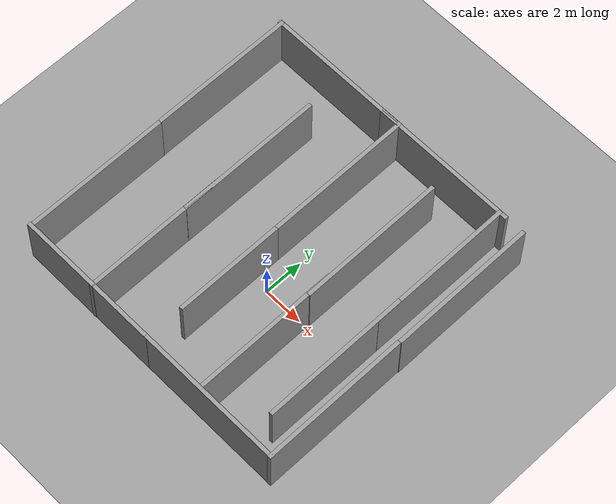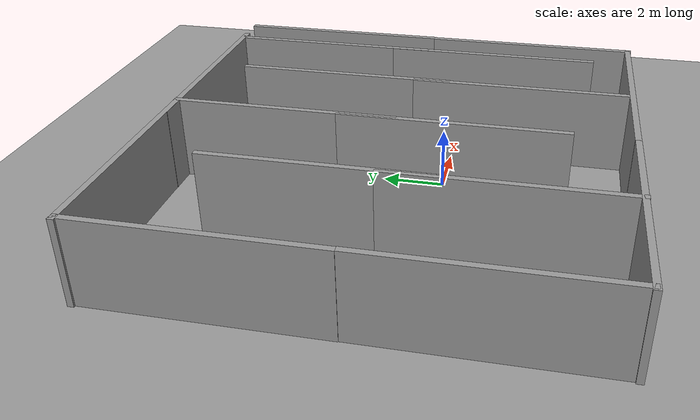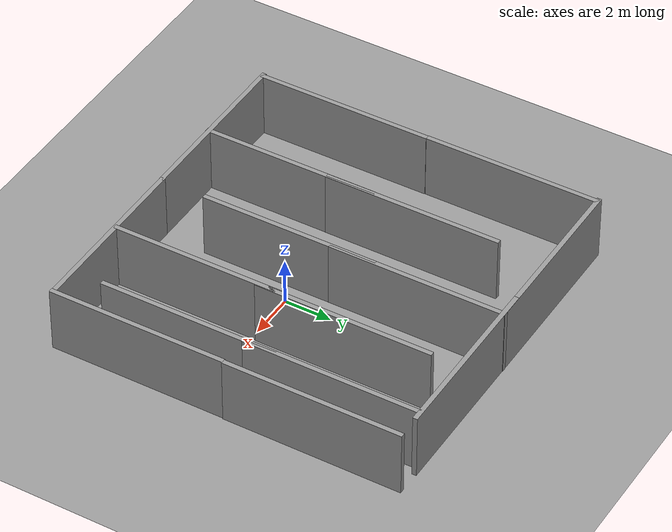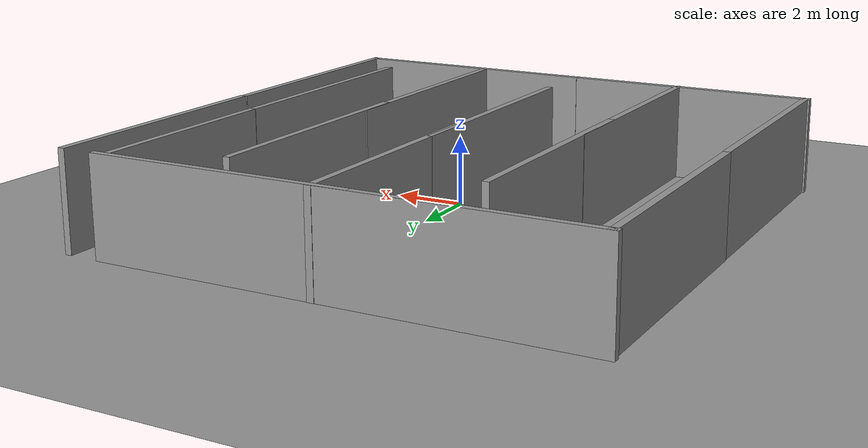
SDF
<sdf version="1.6">
 <world name="default">
  <light name="sun" type="directional">
   <pose>0 0 10 0 -0 0</pose>
   <diffuse>0.8 0.8 0.8 1</diffuse>
   <specular>0.2 0.2 0.2 1</specular>
   <attenuation>
    <range>1000</range>
    <constant>0.9</constant>
    <linear>0.01</linear>
    <quadratic>0.001</quadratic>
   </attenuation>
   <direction>0.5 0.1 -0.9</direction>
  </light>
  <scene><ambient>0.4 0.4 0.4 1</ambient><background>0.7 0.7 0.7 1</background><shadows>1</shadows></scene>
  <physics name="default_physics" default="0" type="ode">
   <max_step_size>0.01</max_step_size>
   <real_time_factor>1</real_time_factor>
   <real_time_update_rate>100</real_time_update_rate>
  </physics>
  <model name="ground_plane_0">
   <static>1</static>
   <link name="link">
    <collision name="collision">
     <geometry><plane><normal>0 0 1</normal><size>100 100</size></plane></geometry>
     <surface><friction><ode><mu>100</mu><mu2>50</mu2></ode></friction></surface>
    </collision>
    <visual name="visual">
     <cast_shadows>0</cast_shadows>
     <geometry><plane><normal>0 0 1</normal><size>100 100</size></plane></geometry>
     <material>
      <script><uri>file://media/materials/scripts/gazebo.material</uri><name>Gazebo/Grey</name></script>
     </material>
    </visual>
    <velocity_decay><linear>0</linear><angular>0</angular></velocity_decay>
   </link>
   <pose>0.497681 0 0 0 -0 0</pose>
  </model>
  <gravity>0 0 -9.8</gravity>
  <magnetic_field>6e-06 2.3e-05 -4.2e-05</magnetic_field>
  <atmosphere type="adiabatic"/>
  <spherical_coordinates>
   <surface_model>EARTH_WGS84</surface_model>
   <latitude_deg>0</latitude_deg>
   <longitude_deg>0</longitude_deg>
   <elevation>0</elevation>
   <heading_deg>0</heading_deg>
  </spherical_coordinates>
  <model name="grey_wall">
   <static>1</static>
   <link name="link">
    <pose>0 0 1.4 0 -0 0</pose>
    <collision name="collision"><geometry><box><size>7.5 0.2 2.8</size></box></geometry></collision>
    <visual name="visual">
     <cast_shadows>0</cast_shadows>
     <geometry><box><size>7.5 0.2 2.8</size></box></geometry>
     <material>
      <script>
       <uri>model://grey_wall/materials/scripts</uri>
       <uri>model://grey_wall/materials/textures</uri>
       <name>vrc/grey_wall</name>
      </script>
     </material>
    </visual>
   </link>
   <pose>1.80676 8.80714 0 0 -0 0</pose>
  </model>
  <model name="grey_wall_clone">
   <static>1</static>
   <link name="link">
    <pose>0 0 1.4 0 -0 0</pose>
    <collision name="collision"><geometry><box><size>7.5 0.2 2.8</size></box></geometry></collision>
    <visual name="visual">
     <cast_shadows>0</cast_shadows>
     <geometry><box><size>7.5 0.2 2.8</size></box></geometry>
     <material>
      <script>
       <uri>model://grey_wall/materials/scripts</uri>
       <uri>model://grey_wall/materials/textures</uri>
       <name>vrc/grey_wall</name>
      </script>
     </material>
    </visual>
   </link>
   <pose>-4.66103 8.81575 0 0 -0 0</pose>
  </model>
  <model name="grey_wall_clone_clone">
   <static>1</static>
   <link name="link">
    <pose>0 0 1.4 0 -0 0</pose>
    <collision name="collision"><geometry><box><size>7.5 0.2 2.8</size></box></geometry></collision>
    <visual name="visual">
     <cast_shadows>0</cast_shadows>
     <geometry><box><size>7.5 0.2 2.8</size></box></geometry>
     <material>
      <script>
       <uri>model://grey_wall/materials/scripts</uri>
       <uri>model://grey_wall/materials/textures</uri>
       <name>vrc/grey_wall</name>
      </script>
     </material>
    </visual>
   </link>
   <pose>-8.23984 5.15552 0 0 0 -1.56757</pose>
  </model>
  <model name="grey_wall_clone_clone_clone">
   <static>1</static>
   <link name="link">
    <pose>0 0 1.4 0 -0 0</pose>
    <collision name="collision"><geometry><box><size>7.5 0.2 2.8</size></box></geometry></collision>
    <visual name="visual">
     <cast_shadows>0</cast_shadows>
     <geometry><box><size>7.5 0.2 2.8</size></box></geometry>
     <material>
      <script>
       <uri>model://grey_wall/materials/scripts</uri>
       <uri>model://grey_wall/materials/textures</uri>
       <name>vrc/grey_wall</name>
      </script>
     </material>
    </visual>
   </link>
   <pose>-8.20187 -2.32331 0 0 0 -1.56757</pose>
  </model>
  <model name="grey_wall_clone_clone_0">
   <static>1</static>
   <link name="link">
    <pose>0 0 1.4 0 -0 0</pose>
    <collision name="collision"><geometry><box><size>7.5 0.2 2.8</size></box></geometry></collision>
    <visual name="visual">
     <cast_shadows>0</cast_shadows>
     <geometry><box><size>7.5 0.2 2.8</size></box></geometry>
     <material>
      <script>
       <uri>model://grey_wall/materials/scripts</uri>
       <uri>model://grey_wall/materials/textures</uri>
       <name>vrc/grey_wall</name>
      </script>
     </material>
    </visual>
   </link>
   <pose>-4.5932 -6.01124 0 0 -0 0</pose>
  </model>
  <model name="grey_wall_clone_clone_1">
   <static>1</static>
   <link name="link">
    <pose>0 0 1.4 0 -0 0</pose>
    <collision name="collision"><geometry><box><size>7.5 0.2 2.8</size></box></geometry></collision>
    <visual name="visual">
     <cast_shadows>0</cast_shadows>
     <geometry><box><size>7.5 0.2 2.8</size></box></geometry>
     <material>
      <script>
       <uri>model://grey_wall/materials/scripts</uri>
       <uri>model://grey_wall/materials/textures</uri>
       <name>vrc/grey_wall</name>
      </script>
     </material>
    </visual>
   </link>
   <pose>2.78521 -6.00736 0 0 -0 0</pose>
  </model>
  <model name="grey_wall_clone_clone_clone_clone">
   <static>1</static>
   <link name="link">
    <pose>0 0 1.4 0 -0 0</pose>
    <collision name="collision"><geometry><box><size>7.5 0.2 2.8</size></box></geometry></collision>
    <visual name="visual">
     <cast_shadows>0</cast_shadows>
     <geometry><box><size>7.5 0.2 2.8</size></box></geometry>
     <material>
      <script>
       <uri>model://grey_wall/materials/scripts</uri>
       <uri>model://grey_wall/materials/textures</uri>
       <name>vrc/grey_wall</name>
      </script>
     </material>
    </visual>
   </link>
   <pose>6.50789 -2.37357 0 0 0 -1.56757</pose>
  </model>
  <model name="grey_wall_clone_clone_clone_clone_0">
   <static>1</static>
   <link name="link">
    <pose>0 0 1.4 0 -0 0</pose>
    <collision name="collision"><geometry><box><size>7.5 0.2 2.8</size></box></geometry></collision>
    <visual name="visual">
     <cast_shadows>0</cast_shadows>
     <geometry><box><size>7.5 0.2 2.8</size></box></geometry>
     <material>
      <script>
       <uri>model://grey_wall/materials/scripts</uri>
       <uri>model://grey_wall/materials/textures</uri>
       <name>vrc/grey_wall</name>
      </script>
     </material>
    </visual>
   </link>
   <pose>6.51737 5.11667 0 0 0 -1.56757</pose>
  </model>
  <model name="grey_wall_clone_clone_clone_clone_1">
   <static>1</static>
   <link name="link">
    <pose>0 0 1.4 0 -0 0</pose>
    <collision name="collision"><geometry><box><size>7.5 0.2 2.8</size></box></geometry></collision>
    <visual name="visual">
     <cast_shadows>0</cast_shadows>
     <geometry><box><size>7.5 0.2 2.8</size></box></geometry>
     <material>
      <script>
       <uri>model://grey_wall/materials/scripts</uri>
       <uri>model://grey_wall/materials/textures</uri>
       <name>vrc/grey_wall</name>
      </script>
     </material>
    </visual>
   </link>
   <pose>-4.28461 -2.37983 0 0 0 -1.56757</pose>
  </model>
  <model name="grey_wall_clone_clone_clone_clone_2">
   <static>1</static>
   <link name="link">
    <pose>0 0 1.4 0 -0 0</pose>
    <collision name="collision"><geometry><box><size>7.5 0.2 2.8</size></box></geometry></collision>
    <visual name="visual">
     <cast_shadows>0</cast_shadows>
     <geometry><box><size>7.5 0.2 2.8</size></box></geometry>
     <material>
      <script>
       <uri>model://grey_wall/materials/scripts</uri>
       <uri>model://grey_wall/materials/textures</uri>
       <name>vrc/grey_wall</name>
      </script>
     </material>
    </visual>
   </link>
   <pose>-4.29386 3.01582 0 0 0 -1.56757</pose>
  </model>
  <model name="grey_wall_clone_clone_clone_clone_3">
   <static>1</static>
   <link name="link">
    <pose>0 0 1.4 0 -0 0</pose>
    <collision name="collision"><geometry><box><size>7.5 0.2 2.8</size></box></geometry></collision>
    <visual name="visual">
     <cast_shadows>0</cast_shadows>
     <geometry><box><size>7.5 0.2 2.8</size></box></geometry>
     <material>
      <script>
       <uri>model://grey_wall/materials/scripts</uri>
       <uri>model://grey_wall/materials/textures</uri>
       <name>vrc/grey_wall</name>
      </script>
     </material>
    </visual>
   </link>
   <pose>-0.90781 5.17521 0 0 0 -1.56757</pose>
  </model>
  <model name="grey_wall_clone_clone_clone_clone_4">
   <static>1</static>
   <link name="link">
    <pose>0 0 1.4 0 -0 0</pose>
    <collision name="collision"><geometry><box><size>7.5 0.2 2.8</size></box></geometry></collision>
    <visual name="visual">
     <cast_shadows>0</cast_shadows>
     <geometry><box><size>7.5 0.2 2.8</size></box></geometry>
     <material>
      <script>
       <uri>model://grey_wall/materials/scripts</uri>
       <uri>model://grey_wall/materials/textures</uri>
       <name>vrc/grey_wall</name>
      </script>
     </material>
    </visual>
   </link>
   <pose>-0.89141 -0.362082 0 0 0 -1.56757</pose>
  </model>
  <model name="grey_wall_clone_clone_clone_clone_5">
   <static>1</static>
   <link name="link">
    <pose>0 0 1.4 0 -0 0</pose>
    <collision name="collision"><geometry><box><size>7.5 0.2 2.8</size></box></geometry></collision>
    <visual name="visual">
     <cast_shadows>0</cast_shadows>
     <geometry><box><size>7.5 0.2 2.8</size></box></geometry>
     <material>
      <script>
       <uri>model://grey_wall/materials/scripts</uri>
       <uri>model://grey_wall/materials/textures</uri>
       <name>vrc/grey_wall</name>
      </script>
     </material>
    </visual>
   </link>
   <pose>2.30639 -2.30191 0 0 0 -1.56757</pose>
  </model>
  <model name="grey_wall_clone_clone_clone_clone_6">
   <static>1</static>
   <link name="link">
    <pose>0 0 1.4 0 -0 0</pose>
    <collision name="collision"><geometry><box><size>7.5 0.2 2.8</size></box></geometry></collision>
    <visual name="visual">
     <cast_shadows>0</cast_shadows>
     <geometry><box><size>7.5 0.2 2.8</size></box></geometry>
     <material>
      <script>
       <uri>model://grey_wall/materials/scripts</uri>
       <uri>model://grey_wall/materials/textures</uri>
       <name>vrc/grey_wall</name>
      </script>
     </material>
    </visual>
   </link>
   <pose>2.32133 3.91858 0 0 0 -1.56757</pose>
  </model>
  <model name="grey_wall_clone_clone_clone_clone_7">
   <static>1</static>
   <link name="link">
    <pose>0 0 1.4 0 -0 0</pose>
    <collision name="collision"><geometry><box><size>7.5 0.2 2.8</size></box></geometry></collision>
    <visual name="visual">
     <cast_shadows>0</cast_shadows>
     <geometry><box><size>7.5 0.2 2.8</size></box></geometry>
     <material>
      <script>
       <uri>model://grey_wall/materials/scripts</uri>
       <uri>model://grey_wall/materials/textures</uri>
       <name>vrc/grey_wall</name>
      </script>
     </material>
    </visual>
   </link>
   <pose>5.16122 5.14151 0 0 0 -1.56757</pose>
  </model>
  <model name="grey_wall_clone_clone_clone_clone_8">
   <static>1</static>
   <link name="link">
    <pose>0 0 1.4 0 -0 0</pose>
    <collision name="collision"><geometry><box><size>7.5 0.2 2.8</size></box></geometry></collision>
    <visual name="visual">
     <cast_shadows>0</cast_shadows>
     <geometry><box><size>7.5 0.2 2.8</size></box></geometry>
     <material>
      <script>
       <uri>model://grey_wall/materials/scripts</uri>
       <uri>model://grey_wall/materials/textures</uri>
       <name>vrc/grey_wall</name>
      </script>
     </material>
    </visual>
   </link>
   <pose>5.17485 -0.992328 0 0 0 -1.56757</pose>
  </model>
 </world>
</sdf>
